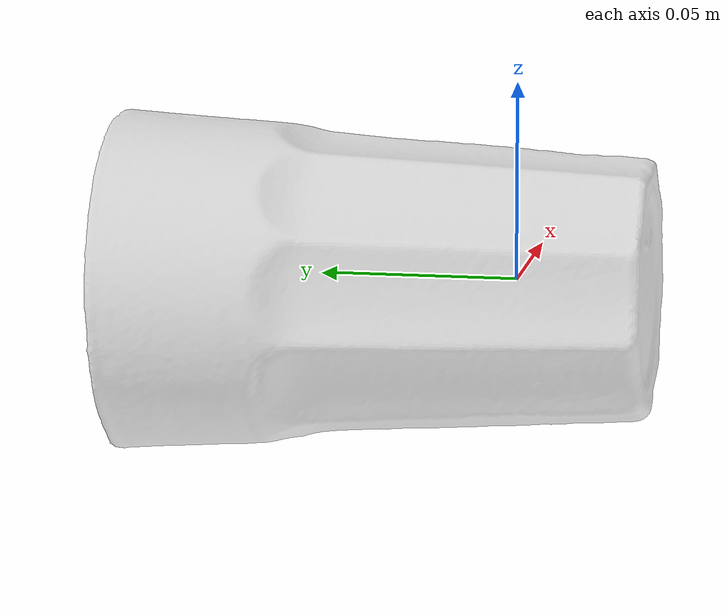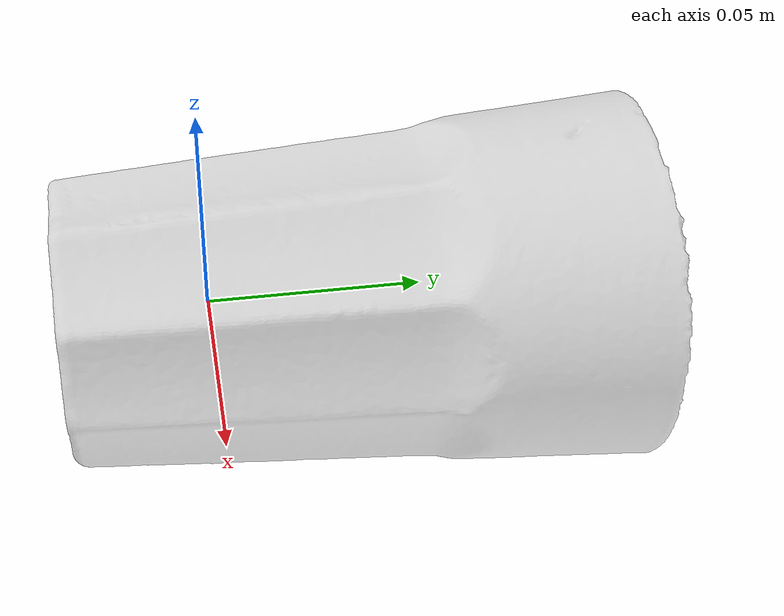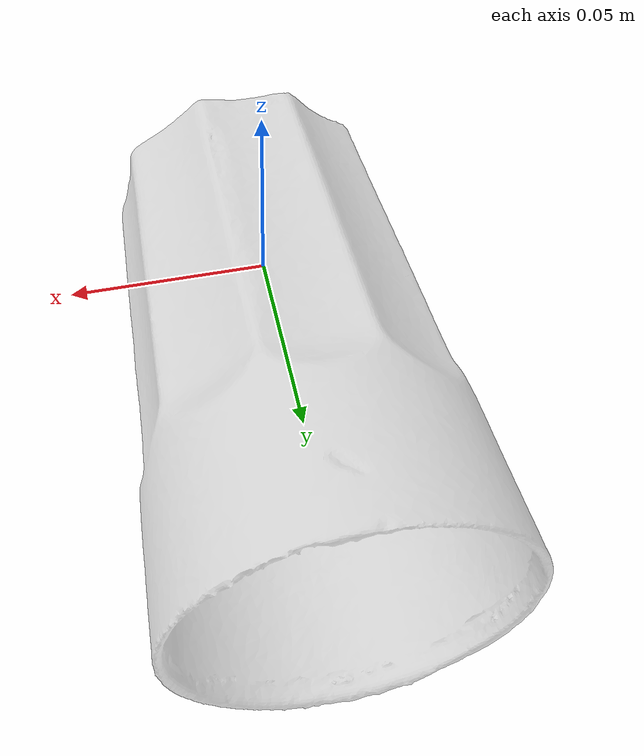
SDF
<?xml version='1.0'?>
<sdf version="1.4">
  <model name="Waterglass">
    <static>false</static>
    <link name="link">
      <inertial>
        <pose>-3.620430561631394e-05 0.040894233096431 -0.0026288669961415517 -1.583989302745913 -1.1177980369373048 0.01580442845208337</pose>
        <mass>0.06333412974872774</mass>
        <inertia>
          <ixx>0.00011912920940080607</ixx>
          <ixy>9.416812444076421e-21</ixy>
          <ixz>-3.2208250297331804e-21</ixz>
          <iyy>0.00011888672240362036</iyy>
          <iyz>-3.3581853269180014e-21</iyz>
          <izz>4.8189277533802955e-05</izz>
        </inertia>
      </inertial>
      <collision name="collision">
        <geometry>
          <mesh>
            <!-- Use a downsampled mesh for collisions -->
            <uri>model:///Waterglass/Waterglass_250_collision.obj</uri>
	        </mesh>
        </geometry>
        <surface>
      </surface>
      </collision>
      <visual name="visual">
        <geometry>
          <mesh>
            <uri>model:///Waterglass/Waterglass_25k_tex.obj</uri>
	        </mesh>
        </geometry>
        <material>
          <script>
            <uri>model:///Waterglass/Waterglass.material</uri>
            <name>Waterglass</name>
          </script>
        </material>
      </visual>
    </link>
  </model>
</sdf>
